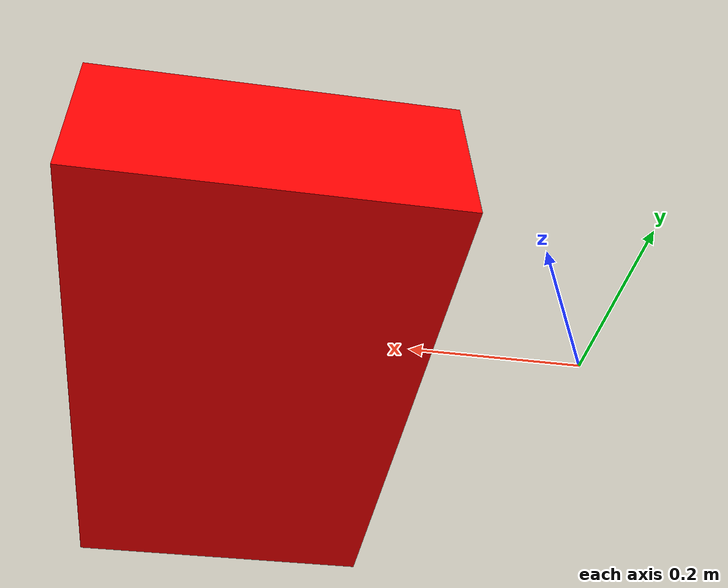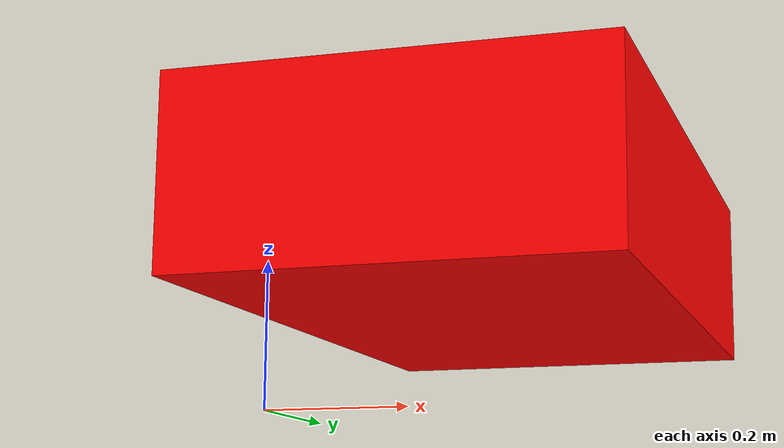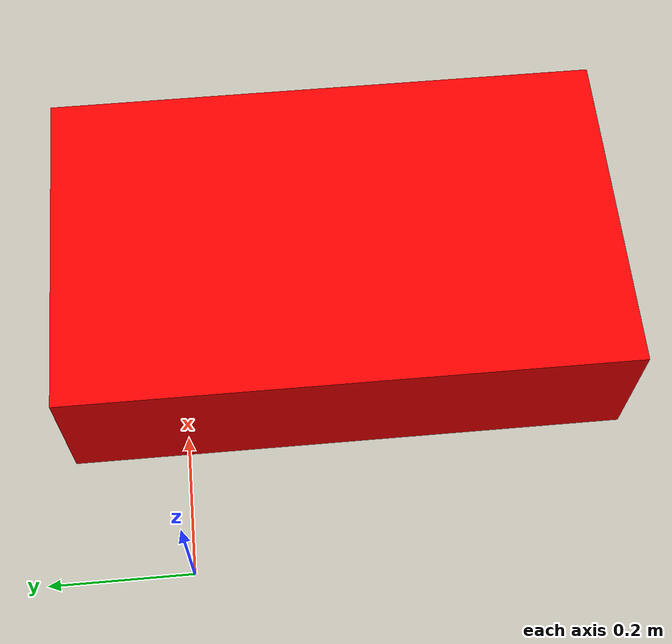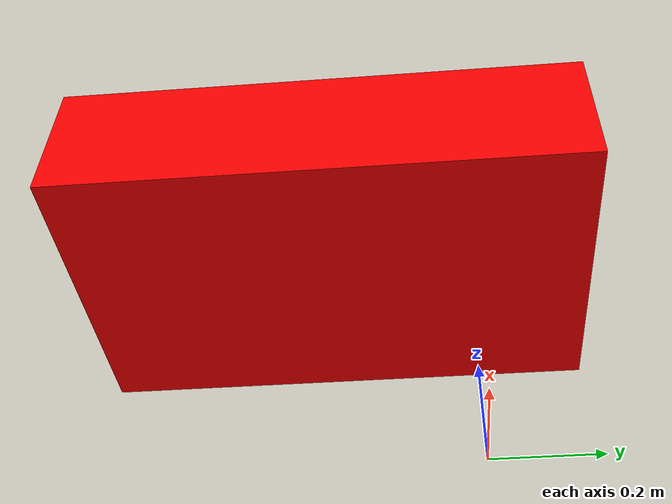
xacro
<?xml version="1.0" ?>
<robot name="bigfootbot" xmlns:xacro="http://ros.org/wiki/xacro">

  <!-- Robot common constants (like width, height, mass, ...) -->
  <xacro:include filename="$(find bigfootbot_description)/urdf/bfb_common_properties.urdf.xacro"/>

  <!-- Base -->
  <xacro:include filename="$(find bigfootbot_description)/urdf/mech/base.urdf.xacro"/>

  <!-- Add robot base -->
  <xacro:base
    length="${base_length}"
    width="${base_width}"
    height="${base_height}"
    mass="${base_mass}"
    wheel_radius="${wheel_radius}"
    wheel_zoff="${wheel_zoff}"
  />

</robot>

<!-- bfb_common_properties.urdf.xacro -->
<robot xmlns:xacro="http://ros.org/wiki/xacro">

  <!-- Materials for Rviz -->
  <material name="Black">
    <color rgba="${0/255} ${0/255} ${0/255} 1.0"/>
  </material>

  <material name="Red">
    <color rgba="${255/255} ${0/255} ${0/255} 1.0"/>
  </material>

  <material name="Green">
    <color rgba="${0/255} ${255/255} ${0/255} 1.0"/>
  </material>

  <!-- ****************** ROBOT CONSTANTS *******************************  -->
  <!-- property is a variable that can be used in other xacro files -->

  <!-- Define the size of the robot's main chassis in meters -->
  <!-- property is a variable that can be used in other xacro files -->
  <xacro:property name="base_width" value="0.45"/>
  <xacro:property name="base_length" value="0.75"/>
  <xacro:property name="base_height" value="0.20"/>
  <xacro:property name="base_mass" value="20"/>

  <!-- Define the shape of the robot's wheels in meters -->
  <xacro:property name="wheel_radius" value="0.165"/>
  <xacro:property name="wheel_width" value="0.1"/>

  <!-- x-axis points forward, y-axis points to left, z-axis points upwards -->
  <!-- Define the gap between the wheel and chassis along y-axis in meters -->
  <xacro:property name="wheel_ygap" value="0.08"/>

  <!-- Position the wheels along the z-axis -->
  <xacro:property name="wheel_zoff" value="0.1"/>

  <!-- Position the wheels along the x-axis -->
  <xacro:property name="wheel_xoff" value="0.275"/>

  <!-- Maximum torque which the wheels can produce, in Nm -->
  <xacro:property name="wheel_torque" value="100" />

</robot>

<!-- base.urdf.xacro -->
<robot xmlns:xacro="http://ros.org/wiki/xacro">

  <!-- Inertial -->
  <xacro:include filename="$(find bigfootbot_description)/urdf/inertials.urdf.xacro"/>

  <!-- ********************** ROBOT BASE AND BASE FOOTPRINT *********************************  -->

  <xacro:macro name="base" params="length width height mass wheel_radius wheel_zoff">

    <!-- Define the center of the main robot chassis projected on the ground -->
    <link name="base_footprint"/>

    <!-- The base footprint of the robot is located underneath the chassis -->
    <joint name="base_joint" type="fixed">
      <parent link="base_footprint"/>
      <child link="base_link" />
      <origin xyz="0.0 0.0 ${(wheel_radius+wheel_zoff)}" rpy="0 0 0"/>
    </joint>

    <link name="base_link">
      <visual>
        <origin xyz="${length/2} ${-width/2} ${-height/2}" rpy="0 0 1.57079632679"/>
        <geometry>
          <box size="${length} ${width} ${height}"/>
          <!--mesh filename="package://bigfootbot_description/meshes/frame_with_covers_2_m.stl" scale="1.0 1.0 1.0"/--> <!-- scale="0.001 0.001 0.001"-->

          <!--mesh filename="file://$(find bigfootbot_description)/meshes/frame_with_covers_2_m.stl" scale="1.0 1.0 1.0"/--> <!-- scale="0.001 0.001 0.001"-->
          <!-- file:// is used instead on package:// because URDF->SDF converter converts package:// to model:// and Gazebo can't fint STLs -->
        </geometry>
        <material name="Red"/> <!-- Material for RViz-->
      </visual>

      <collision>
        <geometry>
          <box size="${length} ${width} ${height}"/>
        </geometry>
      </collision>

      <xacro:box_inertia m="${mass}" w="${width}" d="${length}" h="${height}"/>
    </link>

    <gazebo reference="base_link">
      <visual>
        <material> <!-- Red material for Gazebo -->
          <ambient>1.0 0.0 0.0 1.0</ambient> <!-- RGB [0..1] + alpha [0..1]-->
          <diffuse>1.0 0.0 0.0 1.0</diffuse>
          <specular>0.0 0.0 0.0 1.0</specular>
          <emissive>0.0 0.0 0.0 1.0</emissive>
        </material>
      </visual>
    </gazebo>

  </xacro:macro>

</robot>

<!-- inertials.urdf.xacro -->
<robot xmlns:xacro="http://ros.org/wiki/xacro">

  <!-- Define intertial property macros  -->

  <xacro:macro name="box_inertia" params="m w h d">
    <inertial>
      <origin xyz="0 0 0" rpy="${pi/2} 0 ${pi/2}"/>
      <mass value="${m}"/>
      <inertia ixx="${(m/12) * (h*h + d*d)}" ixy="0.0" ixz="0.0" iyy="${(m/12) * (w*w + d*d)}" iyz="0.0" izz="${(m/12) * (w*w + h*h)}"/>
    </inertial>
  </xacro:macro>

  <!-- Calculates the inertial properties of a cylinder with the given mass, radius, and height.
  The macro returns an "inertial" element with the calculated mass and moment of inertia. -->
  <xacro:macro name="cylinder_inertia" params="m r h">
    <inertial>
      <origin xyz="0 0 0" rpy="${pi/2} 0 0" />
      <mass value="${m}"/>
      <inertia ixx="${(m/12) * (3*r*r + h*h)}" ixy = "0" ixz = "0" iyy="${(m/12) * (3*r*r + h*h)}" iyz = "0" izz="${(m/2) * (r*r)}"/>
    </inertial>
  </xacro:macro>

</robot>
